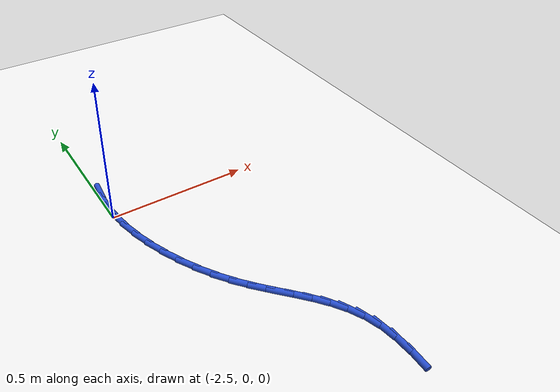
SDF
<sdf version="1.6">
 <world name="default">
  <model name="ground_plane">
   <static>1</static>
   <link name="link">
    <collision name="collision">
     <geometry><plane><normal>0 0 1</normal><size>100 100</size></plane></geometry>
     <surface><friction><ode><mu>100</mu><mu2>50</mu2></ode></friction></surface>
    </collision>
    <visual name="visual">
     <cast_shadows>0</cast_shadows>
     <geometry><plane><normal>0 0 1</normal><size>100 100</size></plane></geometry>
     <material>
      <script><uri>file://media/materials/scripts/gazebo.material</uri><name>Gazebo/WhiteGlow</name></script>
     </material>
    </visual>
   </link>
  </model>
  <model name="line">
   <link name="link_90">
    <pose>-2.489306814687137 0.13458704358240914 0.01 0 1.57 1.4596663216119987</pose>
    <collision name="collision">
     <geometry><cylinder><radius>0.01</radius><length>0.08</length></cylinder></geometry>
    </collision>
    <visual name="visual">
     <material>
      <script><name>Gazebo/Blue</name><uri>file://media/materials/scripts/gazebo.material</uri></script>
     </material>
     <geometry><cylinder><radius>0.01</radius><length>0.08</length></cylinder></geometry>
    </visual>
   </link>
   <link name="link_91">
    <pose>-2.4951521211969854 0.08220493737757475 0.01 0 1.57 -1.569528561928525</pose>
    <collision name="collision">
     <geometry><cylinder><radius>0.01</radius><length>0.08</length></cylinder></geometry>
    </collision>
    <visual name="visual">
     <material>
      <script><name>Gazebo/Blue</name><uri>file://media/materials/scripts/gazebo.material</uri></script>
     </material>
     <geometry><cylinder><radius>0.01</radius><length>0.08</length></cylinder></geometry>
    </visual>
   </link>
   <link name="link_92">
    <pose>-2.495082917968886 0.027618165918520763 0.01 0 1.57 -1.471553067401846</pose>
    <collision name="collision">
     <geometry><cylinder><radius>0.01</radius><length>0.08</length></cylinder></geometry>
    </collision>
    <visual name="visual">
     <material>
      <script><name>Gazebo/Blue</name><uri>file://media/materials/scripts/gazebo.material</uri></script>
     </material>
     <geometry><cylinder><radius>0.01</radius><length>0.08</length></cylinder></geometry>
    </visual>
   </link>
   <link name="link_93">
    <pose>-2.4894925864756177 -0.028526362064149515 0.01 0 1.57 -1.3851064599000844</pose>
    <collision name="collision">
     <geometry><cylinder><radius>0.01</radius><length>0.08</length></cylinder></geometry>
    </collision>
    <visual name="visual">
     <material>
      <script><name>Gazebo/Blue</name><uri>file://media/materials/scripts/gazebo.material</uri></script>
     </material>
     <geometry><cylinder><radius>0.01</radius><length>0.08</length></cylinder></geometry>
    </visual>
   </link>
   <link name="link_94">
    <pose>-2.4787745081899595 -0.08558173783983353 0.01 0 1.57 -1.3074710727485688</pose>
    <collision name="collision">
     <geometry><cylinder><radius>0.01</radius><length>0.08</length></cylinder></geometry>
    </collision>
    <visual name="visual">
     <material>
      <script><name>Gazebo/Blue</name><uri>file://media/materials/scripts/gazebo.material</uri></script>
     </material>
     <geometry><cylinder><radius>0.01</radius><length>0.08</length></cylinder></geometry>
    </visual>
   </link>
   <link name="link_95">
    <pose>-2.4633220645846907 -0.14290105267792577 0.01 0 1.57 -1.2362243049978292</pose>
    <collision name="collision">
     <geometry><cylinder><radius>0.01</radius><length>0.08</length></cylinder></geometry>
    </collision>
    <visual name="visual">
     <material>
      <script><name>Gazebo/Blue</name><uri>file://media/materials/scripts/gazebo.material</uri></script>
     </material>
     <geometry><cylinder><radius>0.01</radius><length>0.08</length></cylinder></geometry>
    </visual>
   </link>
   <link name="link_96">
    <pose>-2.4435286371325895 -0.19983739784782356 0.01 0 1.57 -1.169216885385768</pose>
    <collision name="collision">
     <geometry><cylinder><radius>0.01</radius><length>0.08</length></cylinder></geometry>
    </collision>
    <visual name="visual">
     <material>
      <script><name>Gazebo/Blue</name><uri>file://media/materials/scripts/gazebo.material</uri></script>
     </material>
     <geometry><cylinder><radius>0.01</radius><length>0.08</length></cylinder></geometry>
    </visual>
   </link>
   <link name="link_97">
    <pose>-2.419787607306436 -0.25574386461892373 0.01 0 1.57 -1.10449082674004</pose>
    <collision name="collision">
     <geometry><cylinder><radius>0.01</radius><length>0.08</length></cylinder></geometry>
    </collision>
    <visual name="visual">
     <material>
      <script><name>Gazebo/Blue</name><uri>file://media/materials/scripts/gazebo.material</uri></script>
     </material>
     <geometry><cylinder><radius>0.01</radius><length>0.08</length></cylinder></geometry>
    </visual>
   </link>
   <link name="link_98">
    <pose>-2.392492356579009 -0.30997354426062274 0.01 0 1.57 -1.0401728035721198</pose>
    <collision name="collision">
     <geometry><cylinder><radius>0.01</radius><length>0.08</length></cylinder></geometry>
    </collision>
    <visual name="visual">
     <material>
      <script><name>Gazebo/Blue</name><uri>file://media/materials/scripts/gazebo.material</uri></script>
     </material>
     <geometry><cylinder><radius>0.01</radius><length>0.08</length></cylinder></geometry>
    </visual>
   </link>
   <link name="link_99">
    <pose>-2.362036266423086 -0.3618795280423178 0.01 0 1.57 -0.9743537892603299</pose>
    <collision name="collision">
     <geometry><cylinder><radius>0.01</radius><length>0.08</length></cylinder></geometry>
    </collision>
    <visual name="visual">
     <material>
      <script><name>Gazebo/Blue</name><uri>file://media/materials/scripts/gazebo.material</uri></script>
     </material>
     <geometry><cylinder><radius>0.01</radius><length>0.08</length></cylinder></geometry>
    </visual>
   </link>
   <link name="link_100">
    <pose>-2.3288127183114478 -0.41081490723340364 0.01 0 1.57 -0.9051071614224045</pose>
    <collision name="collision">
     <geometry><cylinder><radius>0.01</radius><length>0.08</length></cylinder></geometry>
    </collision>
    <visual name="visual">
     <material>
      <script><name>Gazebo/Blue</name><uri>file://media/materials/scripts/gazebo.material</uri></script>
     </material>
     <geometry><cylinder><radius>0.01</radius><length>0.08</length></cylinder></geometry>
    </visual>
   </link>
   <link name="link_101">
    <pose>-2.2932193046917213 -0.45614174118548984 0.01 0 1.57 -0.8416875774207248</pose>
    <collision name="collision">
     <geometry><cylinder><radius>0.01</radius><length>0.08</length></cylinder></geometry>
    </collision>
    <visual name="visual">
     <material>
      <script><name>Gazebo/Blue</name><uri>file://media/materials/scripts/gazebo.material</uri></script>
     </material>
     <geometry><cylinder><radius>0.01</radius><length>0.08</length></cylinder></geometry>
    </visual>
   </link>
   <link name="link_102">
    <pose>-2.255952688029279 -0.4978590164706814 0.01 0 1.57 -0.8036608298496885</pose>
    <collision name="collision">
     <geometry><cylinder><radius>0.01</radius><length>0.08</length></cylinder></geometry>
    </collision>
    <visual name="visual">
     <material>
      <script><name>Gazebo/Blue</name><uri>file://media/materials/scripts/gazebo.material</uri></script>
     </material>
     <geometry><cylinder><radius>0.01</radius><length>0.08</length></cylinder></geometry>
    </visual>
   </link>
   <link name="link_103">
    <pose>-2.2182019502135146 -0.5370144216922292 0.01 0 1.57 -0.7952878195856717</pose>
    <collision name="collision">
     <geometry><cylinder><radius>0.01</radius><length>0.08</length></cylinder></geometry>
    </collision>
    <visual name="visual">
     <material>
      <script><name>Gazebo/Blue</name><uri>file://media/materials/scripts/gazebo.material</uri></script>
     </material>
     <geometry><cylinder><radius>0.01</radius><length>0.08</length></cylinder></geometry>
    </visual>
   </link>
   <link name="link_104">
    <pose>-2.1812020943269532 -0.5747534434811663 0.01 0 1.57 -0.8192439966457127</pose>
    <collision name="collision">
     <geometry><cylinder><radius>0.01</radius><length>0.08</length></cylinder></geometry>
    </collision>
    <visual name="visual">
     <material>
      <script><name>Gazebo/Blue</name><uri>file://media/materials/scripts/gazebo.material</uri></script>
     </material>
     <geometry><cylinder><radius>0.01</radius><length>0.08</length></cylinder></geometry>
    </visual>
   </link>
   <link name="link_105">
    <pose>-2.146188123452124 -0.6122215684685238 0.01 0 1.57 -0.8785131205207078</pose>
    <collision name="collision">
     <geometry><cylinder><radius>0.01</radius><length>0.08</length></cylinder></geometry>
    </collision>
    <visual name="visual">
     <material>
      <script><name>Gazebo/Blue</name><uri>file://media/materials/scripts/gazebo.material</uri></script>
     </material>
     <geometry><cylinder><radius>0.01</radius><length>0.08</length></cylinder></geometry>
    </visual>
   </link>
   <link name="link_106">
    <pose>-2.114395040671553 -0.6505642832853348 0.01 0 1.57 -0.975477217000997</pose>
    <collision name="collision">
     <geometry><cylinder><radius>0.01</radius><length>0.08</length></cylinder></geometry>
    </collision>
    <visual name="visual">
     <material>
      <script><name>Gazebo/Blue</name><uri>file://media/materials/scripts/gazebo.material</uri></script>
     </material>
     <geometry><cylinder><radius>0.01</radius><length>0.08</length></cylinder></geometry>
    </visual>
   </link>
   <link name="link_107">
    <pose>-2.087057849067767 -0.6909270745626317 0.01 0 1.57 -1.1093175567131153</pose>
    <collision name="collision">
     <geometry><cylinder><radius>0.01</radius><length>0.08</length></cylinder></geometry>
    </collision>
    <visual name="visual">
     <material>
      <script><name>Gazebo/Blue</name><uri>file://media/materials/scripts/gazebo.material</uri></script>
     </material>
     <geometry><cylinder><radius>0.01</radius><length>0.08</length></cylinder></geometry>
    </visual>
   </link>
   <link name="link_108">
    <pose>-2.0654115517232925 -0.7344554289314469 0.01 0 1.57 -1.2722862557591532</pose>
    <collision name="collision">
     <geometry><cylinder><radius>0.01</radius><length>0.08</length></cylinder></geometry>
    </collision>
    <visual name="visual">
     <material>
      <script><name>Gazebo/Blue</name><uri>file://media/materials/scripts/gazebo.material</uri></script>
     </material>
     <geometry><cylinder><radius>0.01</radius><length>0.08</length></cylinder></geometry>
    </visual>
   </link>
   <link name="link_109">
    <pose>-2.0506911517206574 -0.782294833022813 0.01 0 1.57 -1.4406670239455963</pose>
    <collision name="collision">
     <geometry><cylinder><radius>0.01</radius><length>0.08</length></cylinder></geometry>
    </collision>
    <visual name="visual">
     <material>
      <script><name>Gazebo/Blue</name><uri>file://media/materials/scripts/gazebo.material</uri></script>
     </material>
     <geometry><cylinder><radius>0.01</radius><length>0.08</length></cylinder></geometry>
    </visual>
   </link>
   <link name="link_110">
    <pose>-2.0437615144253445 -0.8352458460968384 0.01 0 1.57 -1.5599201354331103</pose>
    <collision name="collision">
     <geometry><cylinder><radius>0.01</radius><length>0.08</length></cylinder></geometry>
    </collision>
    <visual name="visual">
     <material>
      <script><name>Gazebo/Blue</name><uri>file://media/materials/scripts/gazebo.material</uri></script>
     </material>
     <geometry><cylinder><radius>0.01</radius><length>0.08</length></cylinder></geometry>
    </visual>
   </link>
   <link name="link_111">
    <pose>-2.04314502488193 -0.8919260951121366 0.01 0 1.57 1.51404029605471</pose>
    <collision name="collision">
     <geometry><cylinder><radius>0.01</radius><length>0.08</length></cylinder></geometry>
    </collision>
    <visual name="visual">
     <material>
      <script><name>Gazebo/Blue</name><uri>file://media/materials/scripts/gazebo.material</uri></script>
     </material>
     <geometry><cylinder><radius>0.01</radius><length>0.08</length></cylinder></geometry>
    </visual>
   </link>
  </model>
 </world>
</sdf>
